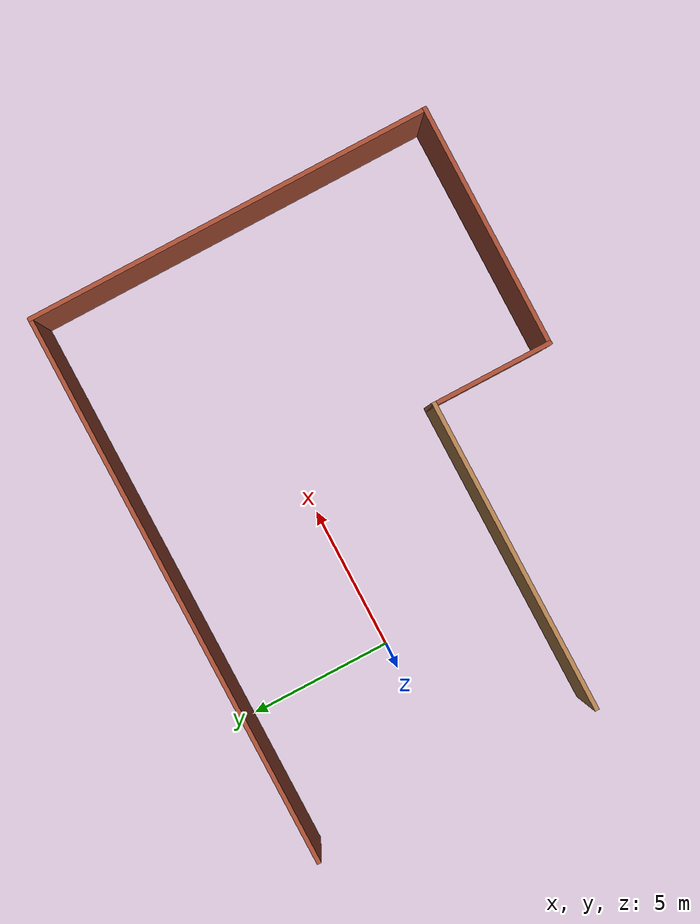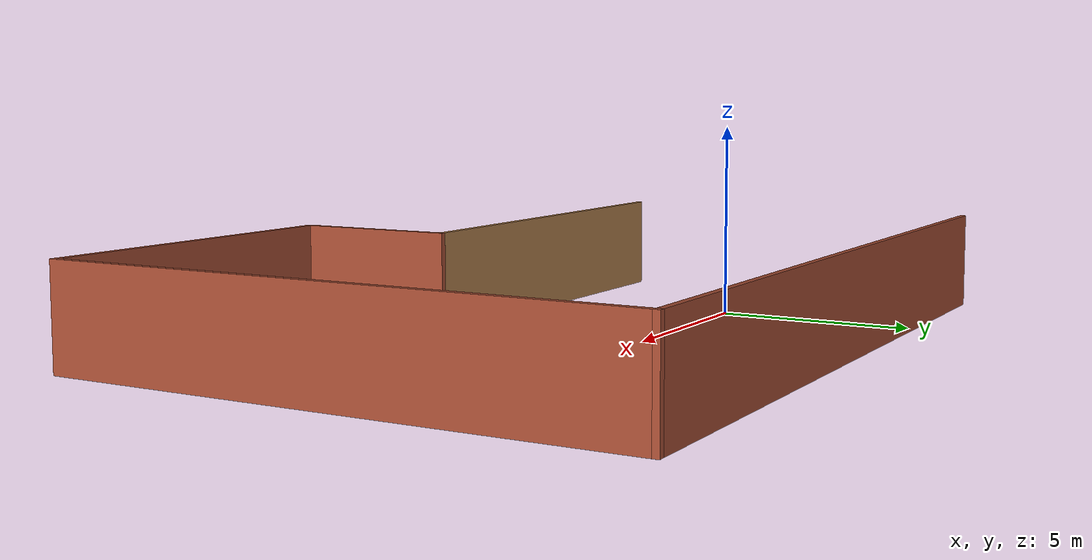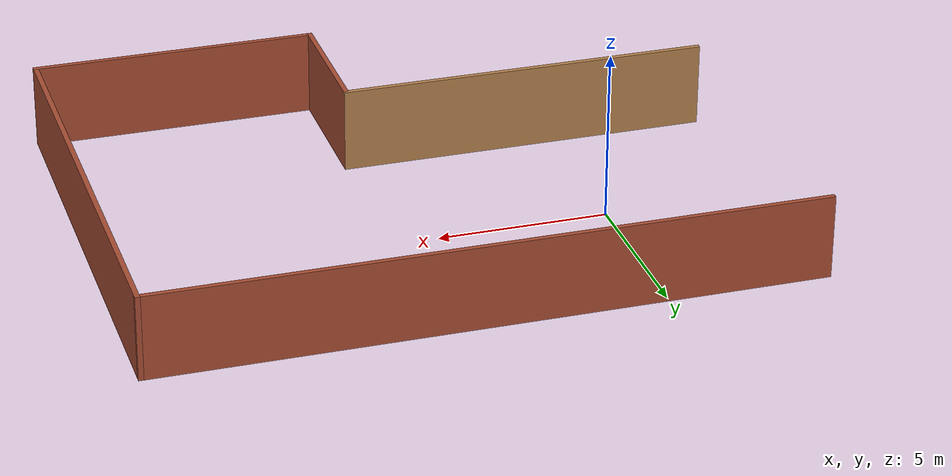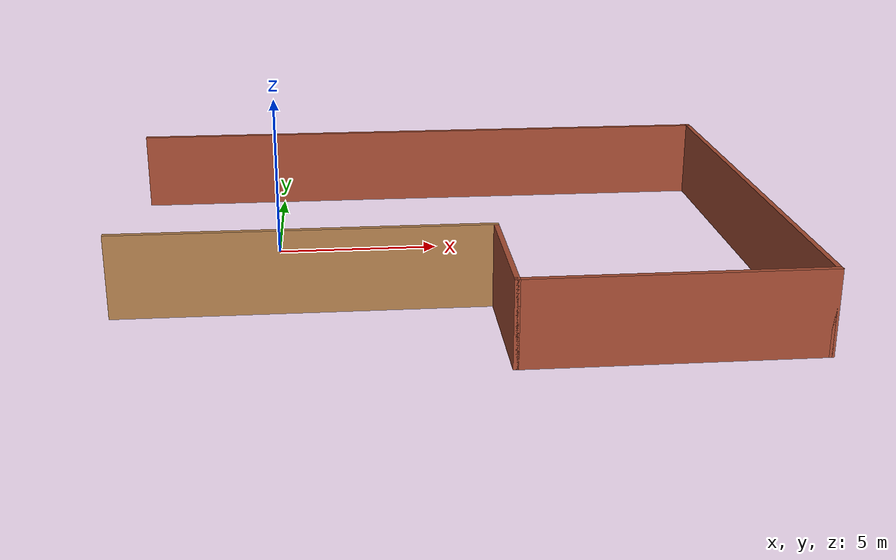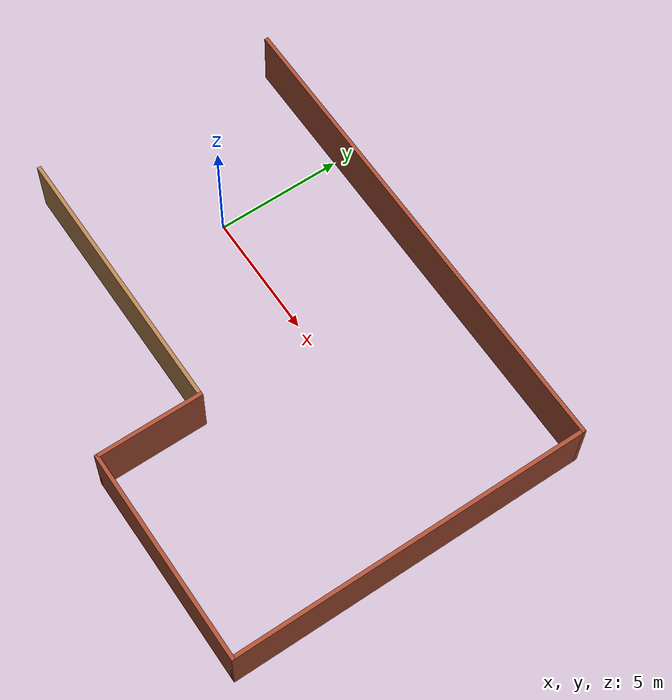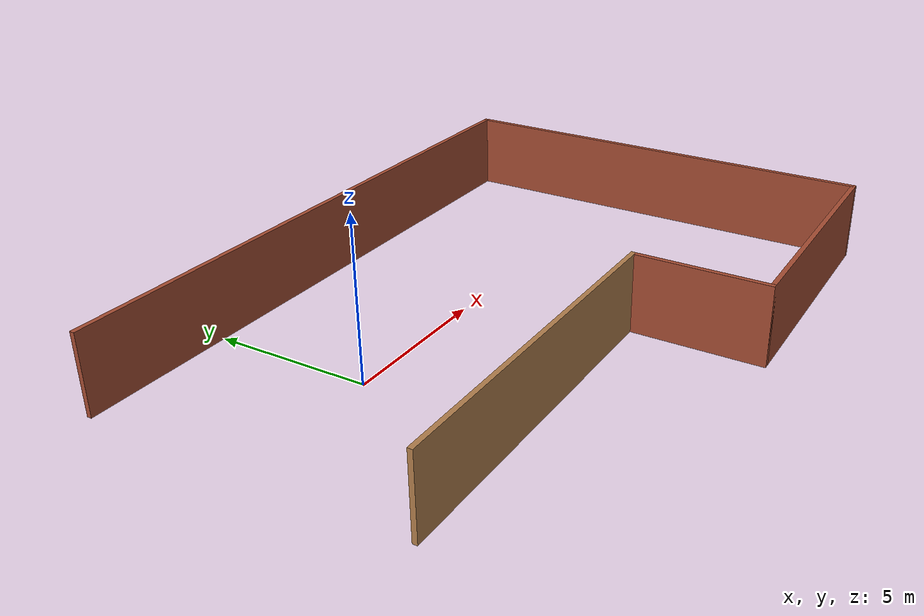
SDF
<?xml version='1.0'?>
<sdf version='1.6'>
  <model name='custom_world'>
    <pose frame=''>4.99912 -1.95172 0 0 -0 0</pose>
    <link name='Wall_16'>
      <collision name='Wall_16_Collision'>
        <geometry>
          <box>
            <size>11 0.15 2.5</size>
          </box>
        </geometry>
        <pose frame=''>0 0 1.25 0 -0 0</pose>
      </collision>
      <visual name='Wall_16_Visual'>
        <pose frame=''>0 0 1.25 0 -0 0</pose>
        <geometry>
          <box>
            <size>11 0.15 2.5</size>
          </box>
        </geometry>
        <material>
          <script>
            <uri>file://media/materials/scripts/gazebo.material</uri>
            <name>Gazebo/Wood</name>
          </script>
          <ambient>1 1 1 1</ambient>
        </material>
        <meta>
          <layer>0</layer>
        </meta>
      </visual>
      <pose frame=''>-4.1 -2.95 0 0 -0 0</pose>
    </link>
    <link name='Wall_17'>
      <collision name='Wall_17_Collision'>
        <geometry>
          <box>
            <size>4.25 0.15 2.5</size>
          </box>
        </geometry>
        <pose frame=''>0 0 1.25 0 -0 0</pose>
      </collision>
      <visual name='Wall_17_Visual'>
        <pose frame=''>0 0 1.25 0 -0 0</pose>
        <geometry>
          <box>
            <size>4.25 0.15 2.5</size>
          </box>
        </geometry>
        <material>
          <script>
            <uri>file://media/materials/scripts/gazebo.material</uri>
            <name>Gazebo/Bricks</name>
          </script>
          <ambient>1 1 1 1</ambient>
        </material>
        <meta>
          <layer>0</layer>
        </meta>
      </visual>
      <pose frame=''>1.325 -5 0 0 -0 -1.5708</pose>
    </link>
    <link name='Wall_18'>
      <collision name='Wall_18_Collision'>
        <geometry>
          <box>
            <size>8.5 0.15 2.5</size>
          </box>
        </geometry>
        <pose frame=''>0 0 1.25 0 -0 0</pose>
      </collision>
      <visual name='Wall_18_Visual'>
        <pose frame=''>0 0 1.25 0 -0 0</pose>
        <geometry>
          <box>
            <size>8.5 0.15 2.5</size>
          </box>
        </geometry>
        <material>
          <script>
            <uri>file://media/materials/scripts/gazebo.material</uri>
            <name>Gazebo/Bricks</name>
          </script>
          <ambient>0.996078 0.47451 0.0196078 1</ambient>
        </material>
        <meta>
          <layer>0</layer>
        </meta>
      </visual>
      <pose frame=''>5.5 -7.05 0 0 -0 0</pose>
    </link>
    <link name='Wall_19'>
      <collision name='Wall_19_Collision'>
        <geometry>
          <box>
            <size>14.25 0.15 2.5</size>
          </box>
        </geometry>
        <pose frame=''>0 0 1.25 0 -0 0</pose>
      </collision>
      <visual name='Wall_19_Visual'>
        <pose frame=''>0 0 1.25 0 -0 0</pose>
        <geometry>
          <box>
            <size>14.25 0.15 2.5</size>
          </box>
        </geometry>
        <material>
          <script>
            <uri>file://media/materials/scripts/gazebo.material</uri>
            <name>Gazebo/Bricks</name>
          </script>
          <ambient>1 1 1 1</ambient>
        </material>
        <meta>
          <layer>0</layer>
        </meta>
      </visual>
      <pose frame=''>9.675 -0 0 0 -0 1.5708</pose>
    </link>
    <link name='Wall_20'>
      <collision name='Wall_20_Collision'>
        <geometry>
          <box>
            <size>19.5 0.15 2.5</size>
          </box>
        </geometry>
        <pose frame=''>0 0 1.25 0 -0 0</pose>
      </collision>
      <visual name='Wall_20_Visual'>
        <pose frame=''>0 0 1.25 0 -0 0</pose>
        <geometry>
          <box>
            <size>19.5 0.15 2.5</size>
          </box>
        </geometry>
        <material>
          <script>
            <uri>file://media/materials/scripts/gazebo.material</uri>
            <name>Gazebo/Bricks</name>
          </script>
          <ambient>0.435294 0.796078 0.67451 1</ambient>
        </material>
        <meta>
          <layer>0</layer>
        </meta>
      </visual>
      <pose frame=''>-0 7.05 0 0 -0 3.14159</pose>
    </link>
    <static>1</static>
  </model>
</sdf>
